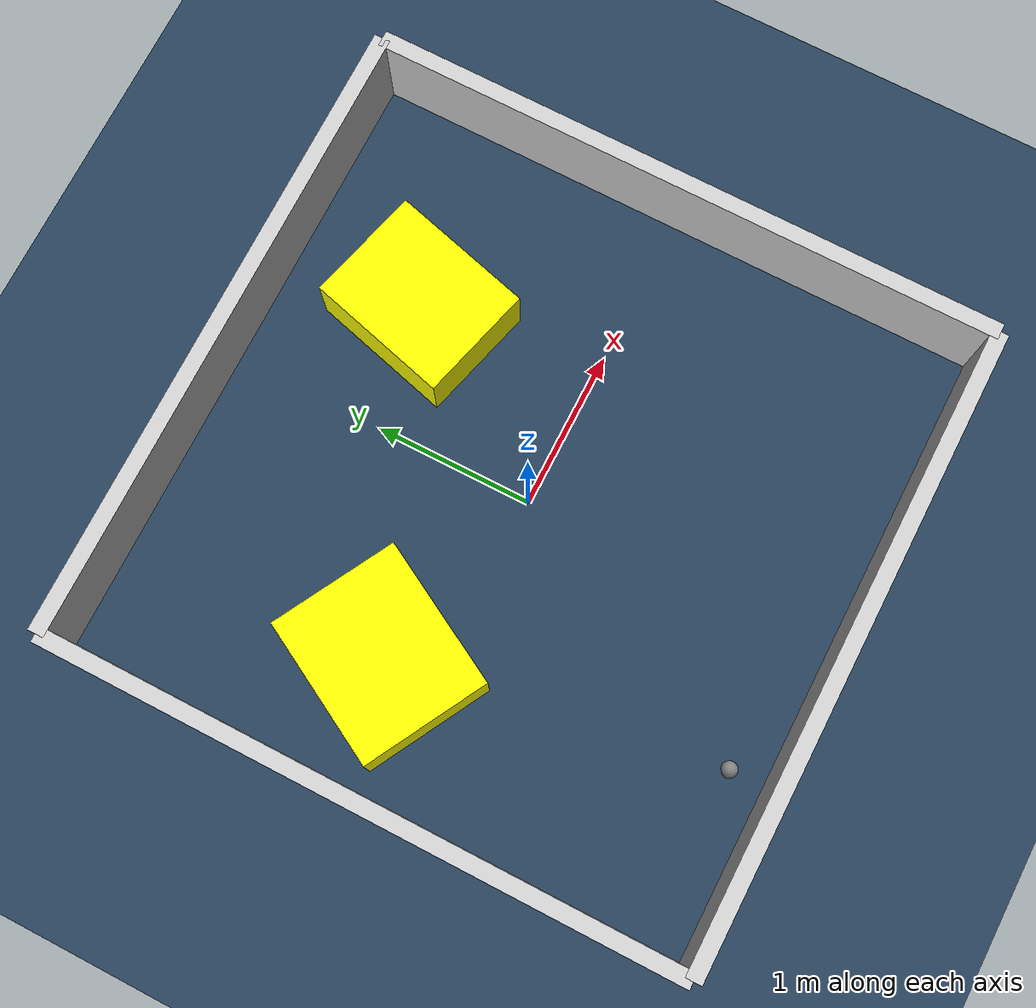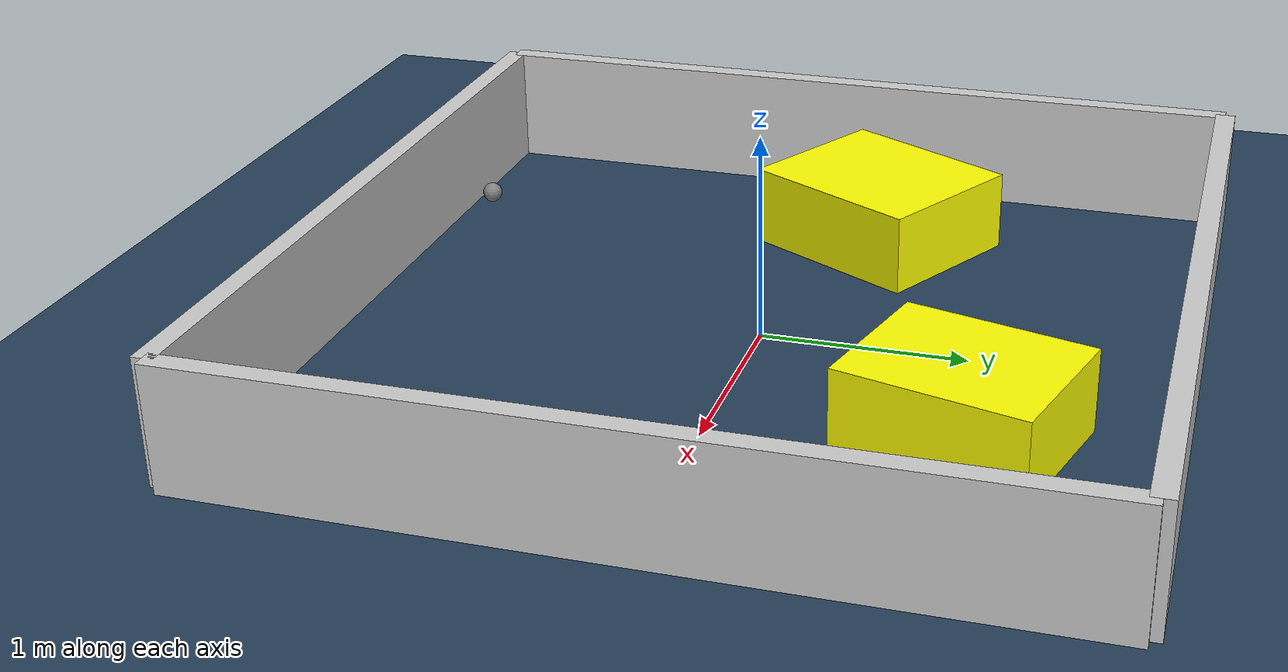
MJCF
<?xml version="1.0" ?>
<mujoco model="generated_environment">
  <option timestep="0.01" integrator="RK4" cone="elliptic"/>
  <default>
    <geom density="1"/>
  </default>
  <asset>
    <texture builtin="gradient" height="3072" rgb1="0.3 0.5 0.7" rgb2="0 0 0" type="skybox" width="512"/>
    <texture builtin="checker" height="300" mark="edge" markrgb="0.8 0.8 0.8" name="groundplane" rgb1="0.2 0.3 0.4" rgb2="0.1 0.2 0.3" type="2d" width="300"/>
    <material name="groundplane" reflectance="0.2" texrepeat="5 5" texture="groundplane" texuniform="true"/>
    <material name="robot" rgba="0.0 1.0 0.0 1"/>
  </asset>
  <worldbody>
    <light dir="0 0 -1" directional="true" pos="0 0 1.5"/>
    <geom condim="4" friction="1.0 0.005 0.001" material="groundplane" name="floor" size="0 0 0.05" type="plane"/>
    <body name="walls">
      <geom name="wall_1" condim="4" pos="-2.0 0.0 0.3" rgba="0.800000011920929 0.800000011920929 0.800000011920929 1.0" size="0.05 2.0 0.3" type="box"/>
      <geom name="wall_2" condim="4" pos="2.0 0.0 0.3" rgba="0.800000011920929 0.800000011920929 0.800000011920929 1.0" size="0.05 2.0 0.3" type="box"/>
      <geom name="wall_3" condim="4" pos="0.0 -2.0 0.3" rgba="0.800000011920929 0.800000011920929 0.800000011920929 1.0" size="2.0 0.05 0.3" type="box"/>
      <geom name="wall_4" condim="4" pos="0.0 2.0 0.3" rgba="0.800000011920929 0.800000011920929 0.800000011920929 1.0" size="2.0 0.05 0.3" type="box"/>
    </body>
    <body name="robot">
      <joint name="joint_x" type="slide" pos="0 0 0" axis="1 0 0"/>
      <joint name="joint_y" type="slide" pos="0 0 0" axis="0 1 0"/>
      <geom name="robot" type="sphere" pos="-0.8833266158183594 -1.7219229812936472 0.2" size="0.05" mass="5." friction="1.0 0.005 0.0001" condim="4"/>
      <site name="sensor_ball"/>
    </body>
    <body name="obstacle_1_movable">
      <geom name="obstacle_1_movable" condim="4" pos="-1.2193964195028617 0.30843635239040457 0.2" euler="0 0 331.24206195385807" friction="1.0 0.005 0.001" rgba="1 1 0 1" size="0.41028597482242446 0.4801433928418545 0.2" type="box" mass="0.1"/>
      <joint type="free"/>
    </body>
    <body name="obstacle_2_movable">
      <geom name="obstacle_2_movable" condim="4" pos="0.7476351910259262 1.0992831003688948 0.2" euler="0 0 344.9414833673838" friction="1.0 0.005 0.001" rgba="1 1 0 1" size="0.3708038320512135 0.4571209585065908 0.2" type="box" mass="0.1"/>
      <joint type="free"/>
    </body>
  </worldbody>
  <actuator>
    <motor name="actuator_x" joint="joint_x" gear="1" ctrlrange="-1 1"/>
    <motor name="actuator_y" joint="joint_y" gear="1" ctrlrange="-1 1"/>
  </actuator>
</mujoco>
